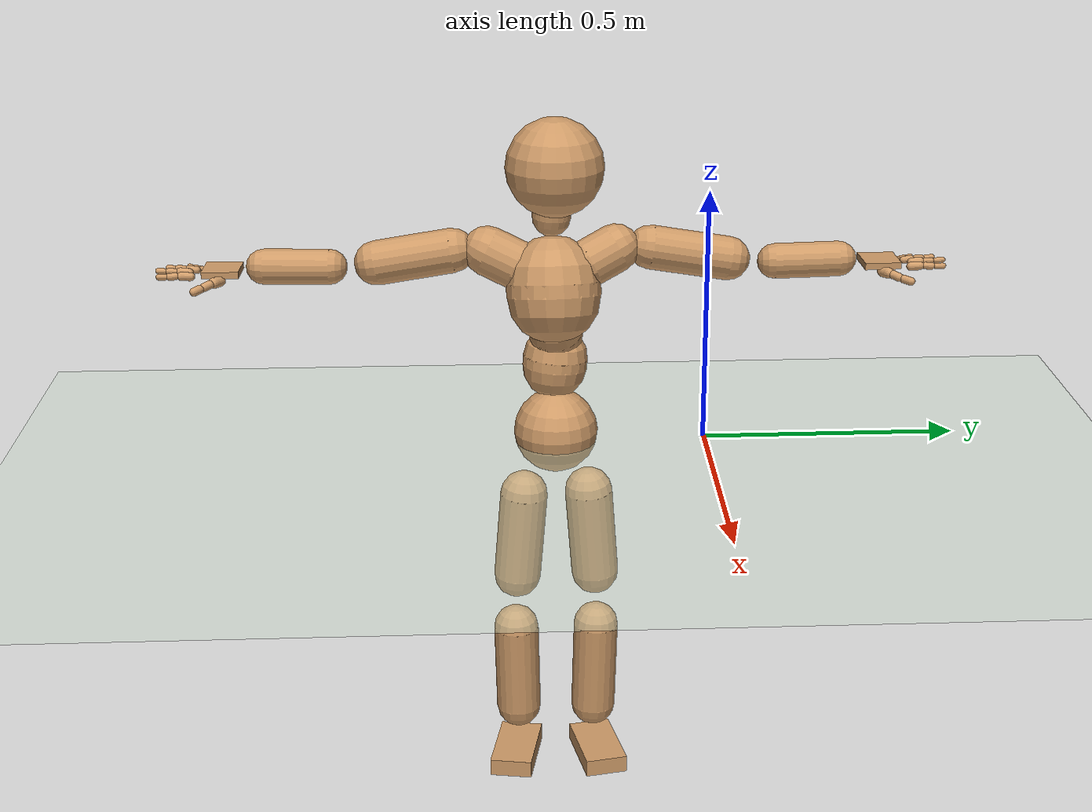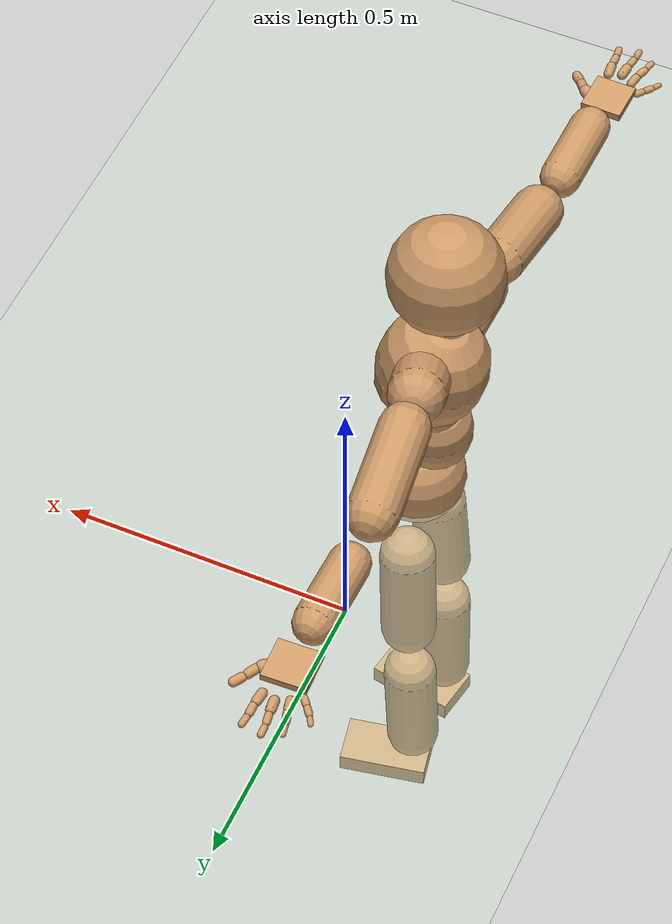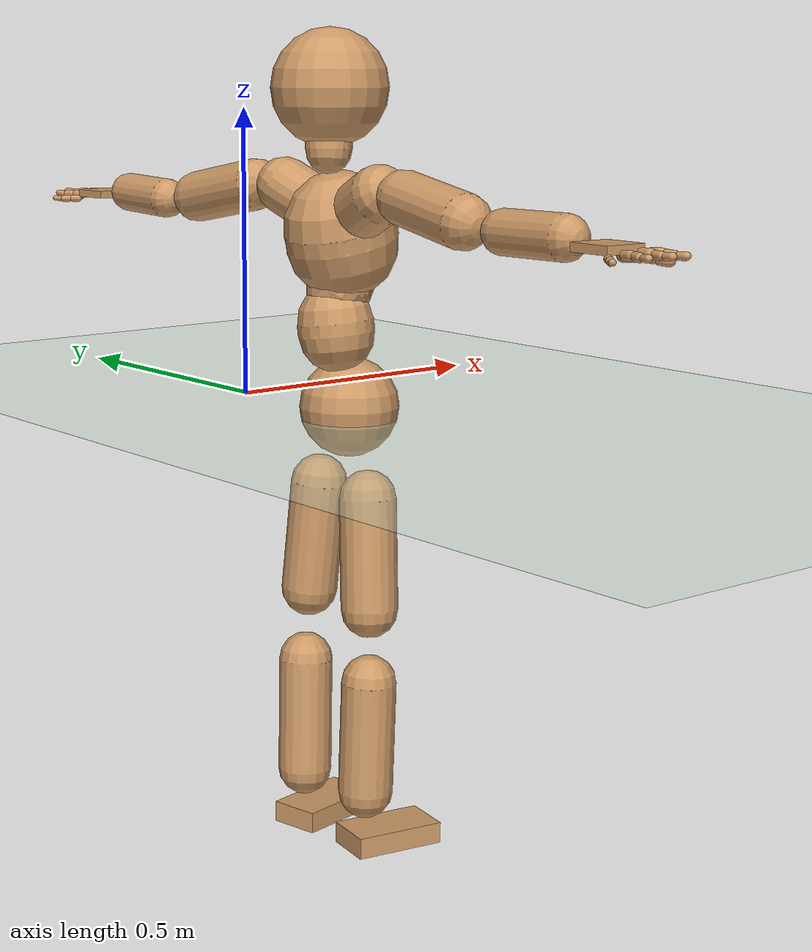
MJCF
<mujoco model="humanoid">
  <compiler coordinate="local" angle="radian"/>
  <default>
    <joint damping="0.0" armature="0.01" stiffness="0.0" limited="true"/>
    <geom conaffinity="1" condim="3" contype="7" margin="0.001" rgba="0.8 0.6 .4 1"/>
  </default>
  <asset>
    <texture type="skybox" builtin="gradient" rgb1=".4 .5 .6" rgb2="0 0 0" width="100" height="100"/>
    <texture builtin="flat" height="1278" mark="cross" markrgb="1 1 1" name="texgeom" random="0.01" rgb1="0.8 0.6 0.4" rgb2="0.8 0.6 0.4" type="cube" width="127"/>
    <texture builtin="checker" height="100" name="texplane" rgb1="0 0 0" rgb2="0.8 0.8 0.8" type="2d" width="100"/>
    <material name="MatPlane" reflectance="0.5" shininess="1" specular="1" texrepeat="60 60" texture="texplane"/>
    <material name="geom" texture="texgeom" texuniform="true"/>
  </asset>
  <worldbody>
    <light cutoff="100" diffuse="1 1 1" dir="-0 0 -1.3" directional="true" exponent="1" pos="0 0 1.3" specular=".1 .1 .1"/>
    <geom conaffinity="1" condim="3" name="floor" pos="0 0 0" rgba="0.8 0.9 0.8 1" size="100 100 .2" type="plane" material="MatPlane"/>
    <body name="Pelvis" pos="0.0001 -0.2955 0.0185">
      <freejoint name="Pelvis"/>
      <geom type="sphere" contype="1" conaffinity="1" density="500" size="0.0831" pos="0.0000 0.0000 0.0000" name="Pelvis"/>
      <body name="L_Hip" pos="-0.0088 0.0613 -0.0761">
        <joint name="L_Hip_x" type="hinge" pos="0 0 0" axis="1 0 0" stiffness="800" damping="80" armature="0.02" range="-180.0000 180.0000"/>
        <joint name="L_Hip_y" type="hinge" pos="0 0 0" axis="0 1 0" stiffness="800" damping="80" armature="0.02" range="-180.0000 180.0000"/>
        <joint name="L_Hip_z" type="hinge" pos="0 0 0" axis="0 0 1" stiffness="800" damping="80" armature="0.02" range="-180.0000 180.0000"/>
        <geom type="capsule" contype="1" conaffinity="1" density="500" fromto="-0.0036 0.0045 -0.0622 -0.0142 0.0180 -0.2486" size="0.0478" name="L_Hip"/>
        <body name="L_Knee" pos="-0.0178 0.0225 -0.3108">
          <joint name="L_Knee_x" type="hinge" pos="0 0 0" axis="1 0 0" stiffness="800" damping="80" armature="0.02" range="-180.0000 180.0000"/>
          <joint name="L_Knee_y" type="hinge" pos="0 0 0" axis="0 1 0" stiffness="800" damping="80" armature="0.02" range="-180.0000 180.0000"/>
          <joint name="L_Knee_z" type="hinge" pos="0 0 0" axis="0 0 1" stiffness="800" damping="80" armature="0.02" range="-180.0000 180.0000"/>
          <geom type="capsule" contype="1" conaffinity="1" density="500" fromto="-0.0022 -0.0018 -0.0650 -0.0088 -0.0073 -0.2599" size="0.046" name="L_Knee"/>
          <body name="L_Ankle" pos="-0.011 -0.0092 -0.3249">
            <joint name="L_Ankle_x" type="hinge" pos="0 0 0" axis="1 0 0" stiffness="800" damping="80" armature="0.02" range="-180.0000 180.0000"/>
            <joint name="L_Ankle_y" type="hinge" pos="0 0 0" axis="0 1 0" stiffness="800" damping="80" armature="0.02" range="-180.0000 180.0000"/>
            <joint name="L_Ankle_z" type="hinge" pos="0 0 0" axis="0 0 1" stiffness="800" damping="80" armature="0.02" range="-180.0000 180.0000"/>
            <geom type="box" contype="1" conaffinity="1" density="500" pos="0.0492 0.0097 -0.0192" size="0.0778 0.043 0.0178" quat="0.9953 0.0000 0.0000 0.0971" name="L_Ankle"/>
            <body name="L_Toe" pos="0.0984 0.0194 -0.0384">
              <joint name="L_Toe_x" type="hinge" pos="0 0 0" axis="1 0 0" stiffness="500" damping="50" armature="0.02" range="-180.0000 180.0000"/>
              <joint name="L_Toe_y" type="hinge" pos="0 0 0" axis="0 1 0" stiffness="500" damping="50" armature="0.02" range="-180.0000 180.0000"/>
              <joint name="L_Toe_z" type="hinge" pos="0 0 0" axis="0 0 1" stiffness="500" damping="50" armature="0.02" range="-180.0000 180.0000"/>
              <geom type="box" contype="1" conaffinity="1" density="500" pos="0.0000 0.0000 0.0205" size="0.0009 0.0022 0.001" quat="0.9945 0.0000 0.0000 0.1047" name="L_Toe"/>
            </body>
          </body>
        </body>
      </body>
      <body name="R_Hip" pos="-0.0102 -0.0598 -0.0823">
        <joint name="R_Hip_x" type="hinge" pos="0 0 0" axis="1 0 0" stiffness="800" damping="80" armature="0.02" range="-180.0000 180.0000"/>
        <joint name="R_Hip_y" type="hinge" pos="0 0 0" axis="0 1 0" stiffness="800" damping="80" armature="0.02" range="-180.0000 180.0000"/>
        <joint name="R_Hip_z" type="hinge" pos="0 0 0" axis="0 0 1" stiffness="800" damping="80" armature="0.02" range="-180.0000 180.0000"/>
        <geom type="capsule" contype="1" conaffinity="1" density="500" fromto="-0.0025 -0.0052 -0.0613 -0.0100 -0.0209 -0.2452" size="0.0477" name="R_Hip"/>
        <body name="R_Knee" pos="-0.0125 -0.0261 -0.3065">
          <joint name="R_Knee_x" type="hinge" pos="0 0 0" axis="1 0 0" stiffness="800" damping="80" armature="0.02" range="-180.0000 180.0000"/>
          <joint name="R_Knee_y" type="hinge" pos="0 0 0" axis="0 1 0" stiffness="800" damping="80" armature="0.02" range="-180.0000 180.0000"/>
          <joint name="R_Knee_z" type="hinge" pos="0 0 0" axis="0 0 1" stiffness="800" damping="80" armature="0.02" range="-180.0000 180.0000"/>
          <geom type="capsule" contype="1" conaffinity="1" density="500" fromto="-0.0013 0.0010 -0.0634 -0.0054 0.0039 -0.2537" size="0.046" name="R_Knee"/>
          <body name="R_Ankle" pos="-0.0067 0.0049 -0.3171">
            <joint name="R_Ankle_x" type="hinge" pos="0 0 0" axis="1 0 0" stiffness="800" damping="80" armature="0.02" range="-180.0000 180.0000"/>
            <joint name="R_Ankle_y" type="hinge" pos="0 0 0" axis="0 1 0" stiffness="800" damping="80" armature="0.02" range="-180.0000 180.0000"/>
            <joint name="R_Ankle_z" type="hinge" pos="0 0 0" axis="0 0 1" stiffness="800" damping="80" armature="0.02" range="-180.0000 180.0000"/>
            <geom type="box" contype="1" conaffinity="1" density="500" pos="0.0461 -0.0079 -0.0210" size="0.0778 0.043 0.0178" quat="0.9964 0.0000 0.0000 -0.0844" name="R_Ankle"/>
            <body name="R_Toe" pos="0.0923 -0.0157 -0.0419">
              <joint name="R_Toe_x" type="hinge" pos="0 0 0" axis="1 0 0" stiffness="500" damping="50" armature="0.02" range="-180.0000 180.0000"/>
              <joint name="R_Toe_y" type="hinge" pos="0 0 0" axis="0 1 0" stiffness="500" damping="50" armature="0.02" range="-180.0000 180.0000"/>
              <joint name="R_Toe_z" type="hinge" pos="0 0 0" axis="0 0 1" stiffness="500" damping="50" armature="0.02" range="-180.0000 180.0000"/>
              <geom type="box" contype="1" conaffinity="1" density="500" pos="0.0000 0.0000 0.0222" size="0.0009 0.0022 0.001" quat="0.9974 0.0000 0.0000 -0.0723" name="R_Toe"/>
            </body>
          </body>
        </body>
      </body>
      <body name="Torso" pos="-0.0258 -0.0048 0.0842">
        <joint name="Torso_x" type="hinge" pos="0 0 0" axis="1 0 0" stiffness="1000" damping="100" armature="0.02" range="-180.0000 180.0000"/>
        <joint name="Torso_y" type="hinge" pos="0 0 0" axis="0 1 0" stiffness="1000" damping="100" armature="0.02" range="-180.0000 180.0000"/>
        <joint name="Torso_z" type="hinge" pos="0 0 0" axis="0 0 1" stiffness="1000" damping="100" armature="0.02" range="-180.0000 180.0000"/>
        <geom type="capsule" contype="1" conaffinity="1" density="500" fromto="-0.0035 0.0058 0.0599 -0.0023 0.0039 0.0399" size="0.0635" name="Torso"/>
        <body name="Spine" pos="-0.0058 0.0096 0.0998">
          <joint name="Spine_x" type="hinge" pos="0 0 0" axis="1 0 0" stiffness="1000" damping="100" armature="0.02" range="-180.0000 180.0000"/>
          <joint name="Spine_y" type="hinge" pos="0 0 0" axis="0 1 0" stiffness="1000" damping="100" armature="0.02" range="-180.0000 180.0000"/>
          <joint name="Spine_z" type="hinge" pos="0 0 0" axis="0 0 1" stiffness="1000" damping="100" armature="0.02" range="-180.0000 180.0000"/>
          <geom type="capsule" contype="1" conaffinity="1" density="500" fromto="0.0164 -0.0033 0.0225 0.0110 -0.0022 0.0150" size="0.0542" name="Spine"/>
          <body name="Chest" pos="0.0274 -0.0055 0.0374">
            <joint name="Chest_x" type="hinge" pos="0 0 0" axis="1 0 0" stiffness="1000" damping="100" armature="0.02" range="-180.0000 180.0000"/>
            <joint name="Chest_y" type="hinge" pos="0 0 0" axis="0 1 0" stiffness="1000" damping="100" armature="0.02" range="-180.0000 180.0000"/>
            <joint name="Chest_z" type="hinge" pos="0 0 0" axis="0 0 1" stiffness="1000" damping="100" armature="0.02" range="-180.0000 180.0000"/>
            <geom type="capsule" contype="1" conaffinity="1" density="500" fromto="-0.0185 -0.0016 0.0766 -0.0123 -0.0010 0.0511" size="0.0926" name="Chest"/>
            <body name="Neck" pos="-0.0451 -0.0055 0.1765">
              <joint name="Neck_x" type="hinge" pos="0 0 0" axis="1 0 0" stiffness="500" damping="50" armature="0.02" range="-180.0000 180.0000"/>
              <joint name="Neck_y" type="hinge" pos="0 0 0" axis="0 1 0" stiffness="500" damping="50" armature="0.02" range="-180.0000 180.0000"/>
              <joint name="Neck_z" type="hinge" pos="0 0 0" axis="0 0 1" stiffness="500" damping="50" armature="0.02" range="-180.0000 180.0000"/>
              <geom type="capsule" contype="1" conaffinity="1" density="500" fromto="0.0019 0.0018 0.0246 0.0076 0.0070 0.0985" size="0.0377" name="Neck"/>
              <body name="Head" pos="0.0095 0.0088 0.1232">
                <joint name="Head_x" type="hinge" pos="0 0 0" axis="1 0 0" stiffness="500" damping="50" armature="0.02" range="-180.0000 180.0000"/>
                <joint name="Head_y" type="hinge" pos="0 0 0" axis="0 1 0" stiffness="500" damping="50" armature="0.02" range="-180.0000 180.0000"/>
                <joint name="Head_z" type="hinge" pos="0 0 0" axis="0 0 1" stiffness="500" damping="50" armature="0.02" range="-180.0000 180.0000"/>
                <geom type="sphere" contype="1" conaffinity="1" density="500" size="0.0956" pos="0.0000 0.0000 0.0000" name="Head"/>
              </body>
            </body>
            <body name="L_Thorax" pos="-0.0211 0.0506 0.1049">
              <joint name="L_Thorax_x" type="hinge" pos="0 0 0" axis="1 0 0" stiffness="500" damping="50" armature="0.02" range="-180.0000 180.0000"/>
              <joint name="L_Thorax_y" type="hinge" pos="0 0 0" axis="0 1 0" stiffness="500" damping="50" armature="0.02" range="-180.0000 180.0000"/>
              <joint name="L_Thorax_z" type="hinge" pos="0 0 0" axis="0 0 1" stiffness="500" damping="50" armature="0.02" range="-180.0000 180.0000"/>
              <geom type="capsule" contype="1" conaffinity="1" density="500" fromto="-0.0045 0.0173 0.0083 -0.0179 0.0692 0.0334" size="0.0476" name="L_Thorax"/>
              <body name="L_Shoulder" pos="-0.0224 0.0866 0.0417">
                <joint name="L_Shoulder_x" type="hinge" pos="0 0 0" axis="1 0 0" stiffness="500" damping="50" armature="0.02" range="-180.0000 180.0000"/>
                <joint name="L_Shoulder_y" type="hinge" pos="0 0 0" axis="0 1 0" stiffness="500" damping="50" armature="0.02" range="-180.0000 180.0000"/>
                <joint name="L_Shoulder_z" type="hinge" pos="0 0 0" axis="0 0 1" stiffness="500" damping="50" armature="0.02" range="-180.0000 180.0000"/>
                <geom type="capsule" contype="1" conaffinity="1" density="500" fromto="-0.0045 0.0512 -0.0096 -0.0181 0.2048 -0.0385" size="0.0433" name="L_Shoulder"/>
                <body name="L_Elbow" pos="-0.0226 0.256 -0.0481">
                  <joint name="L_Elbow_x" type="hinge" pos="0 0 0" axis="1 0 0" stiffness="500" damping="50" armature="0.02" range="-720.0000 720.0000"/>
                  <joint name="L_Elbow_y" type="hinge" pos="0 0 0" axis="0 1 0" stiffness="500" damping="50" armature="0.02" range="-720.0000 720.0000"/>
                  <joint name="L_Elbow_z" type="hinge" pos="0 0 0" axis="0 0 1" stiffness="500" damping="50" armature="0.02" range="-720.0000 720.0000"/>
                  <geom type="capsule" contype="1" conaffinity="1" density="500" fromto="0.0008 0.0421 0.0013 0.0030 0.1684 0.0052" size="0.0344" name="L_Elbow"/>
                  <body name="L_Wrist" pos="0.0038 0.2104 0.0065">
                    <joint name="L_Wrist_x" type="hinge" pos="0 0 0" axis="1 0 0" stiffness="300" damping="30" armature="0.02" range="-180.0000 180.0000"/>
                    <joint name="L_Wrist_y" type="hinge" pos="0 0 0" axis="0 1 0" stiffness="300" damping="30" armature="0.02" range="-180.0000 180.0000"/>
                    <joint name="L_Wrist_z" type="hinge" pos="0 0 0" axis="0 0 1" stiffness="300" damping="30" armature="0.02" range="-180.0000 180.0000"/>
                    <geom type="box" contype="1" conaffinity="1" density="500" pos="-0.0017 0.0390 -0.0077" size="0.0358 0.0374 0.0065" quat="0.7222 0.0000 0.0000 -0.6917" name="L_Wrist"/>
                    <body name="L_Index1" pos="0.0195 0.0918 -0.0137">
                      <joint name="L_Index1_x" type="hinge" pos="0 0 0" axis="1 0 0" stiffness="100" damping="10" armature="0.02" range="-180.0000 180.0000"/>
                      <joint name="L_Index1_y" type="hinge" pos="0 0 0" axis="0 1 0" stiffness="100" damping="10" armature="0.02" range="-180.0000 180.0000"/>
                      <joint name="L_Index1_z" type="hinge" pos="0 0 0" axis="0 0 1" stiffness="100" damping="10" armature="0.02" range="-180.0000 180.0000"/>
                      <geom type="capsule" contype="1" conaffinity="1" density="500" fromto="0.0005 0.0059 0.0005 0.0020 0.0236 0.0019" size="0.0083" name="L_Index1"/>
                      <body name="L_Index2" pos="0.0025 0.0295 0.0024">
                        <joint name="L_Index2_x" type="hinge" pos="0 0 0" axis="1 0 0" stiffness="100" damping="10" armature="0.02" range="-180.0000 180.0000"/>
                        <joint name="L_Index2_y" type="hinge" pos="0 0 0" axis="0 1 0" stiffness="100" damping="10" armature="0.02" range="-180.0000 180.0000"/>
                        <joint name="L_Index2_z" type="hinge" pos="0 0 0" axis="0 0 1" stiffness="100" damping="10" armature="0.02" range="-180.0000 180.0000"/>
                        <geom type="capsule" contype="1" conaffinity="1" density="500" fromto="0.0001 0.0042 -0.0003 0.0003 0.0168 -0.0010" size="0.0069" name="L_Index2"/>
                        <body name="L_Index3" pos="0.0003 0.0209 -0.0013">
                          <joint name="L_Index3_x" type="hinge" pos="0 0 0" axis="1 0 0" stiffness="100" damping="10" armature="0.02" range="-180.0000 180.0000"/>
                          <joint name="L_Index3_y" type="hinge" pos="0 0 0" axis="0 1 0" stiffness="100" damping="10" armature="0.02" range="-180.0000 180.0000"/>
                          <joint name="L_Index3_z" type="hinge" pos="0 0 0" axis="0 0 1" stiffness="100" damping="10" armature="0.02" range="-180.0000 180.0000"/>
                          <geom type="capsule" contype="1" conaffinity="1" density="500" fromto="0.0005 0.0046 0.0001 0.0019 0.0184 0.0006" size="0.0058" name="L_Index3"/>
                        </body>
                      </body>
                    </body>
                    <body name="L_Middle1" pos="-0.0016 0.0982 -0.0117">
                      <joint name="L_Middle1_x" type="hinge" pos="0 0 0" axis="1 0 0" stiffness="100" damping="10" armature="0.02" range="-180.0000 180.0000"/>
                      <joint name="L_Middle1_y" type="hinge" pos="0 0 0" axis="0 1 0" stiffness="100" damping="10" armature="0.02" range="-180.0000 180.0000"/>
                      <joint name="L_Middle1_z" type="hinge" pos="0 0 0" axis="0 0 1" stiffness="100" damping="10" armature="0.02" range="-180.0000 180.0000"/>
                      <geom type="capsule" contype="1" conaffinity="1" density="500" fromto="-0.0008 0.0056 0.0002 -0.0030 0.0225 0.0009" size="0.0085" name="L_Middle1"/>
                      <body name="L_Middle2" pos="-0.0038 0.0281 0.0011">
                        <joint name="L_Middle2_x" type="hinge" pos="0 0 0" axis="1 0 0" stiffness="100" damping="10" armature="0.02" range="-180.0000 180.0000"/>
                        <joint name="L_Middle2_y" type="hinge" pos="0 0 0" axis="0 1 0" stiffness="100" damping="10" armature="0.02" range="-180.0000 180.0000"/>
                        <joint name="L_Middle2_z" type="hinge" pos="0 0 0" axis="0 0 1" stiffness="100" damping="10" armature="0.02" range="-180.0000 180.0000"/>
                        <geom type="capsule" contype="1" conaffinity="1" density="500" fromto="-0.0007 0.0044 -0.0001 -0.0028 0.0175 -0.0004" size="0.0064" name="L_Middle2"/>
                        <body name="L_Middle3" pos="-0.0035 0.0219 -0.0006">
                          <joint name="L_Middle3_x" type="hinge" pos="0 0 0" axis="1 0 0" stiffness="100" damping="10" armature="0.02" range="-180.0000 180.0000"/>
                          <joint name="L_Middle3_y" type="hinge" pos="0 0 0" axis="0 1 0" stiffness="100" damping="10" armature="0.02" range="-180.0000 180.0000"/>
                          <joint name="L_Middle3_z" type="hinge" pos="0 0 0" axis="0 0 1" stiffness="100" damping="10" armature="0.02" range="-180.0000 180.0000"/>
                          <geom type="capsule" contype="1" conaffinity="1" density="500" fromto="-0.0003 0.0048 0.0003 -0.0012 0.0191 0.0012" size="0.0056" name="L_Middle3"/>
                        </body>
                      </body>
                    </body>
                    <body name="L_Pinky1" pos="-0.0371 0.075 -0.0183">
                      <joint name="L_Pinky1_x" type="hinge" pos="0 0 0" axis="1 0 0" stiffness="100" damping="10" armature="0.02" range="-180.0000 180.0000"/>
                      <joint name="L_Pinky1_y" type="hinge" pos="0 0 0" axis="0 1 0" stiffness="100" damping="10" armature="0.02" range="-180.0000 180.0000"/>
                      <joint name="L_Pinky1_z" type="hinge" pos="0 0 0" axis="0 0 1" stiffness="100" damping="10" armature="0.02" range="-180.0000 180.0000"/>
                      <geom type="capsule" contype="1" conaffinity="1" density="500" fromto="-0.0023 0.0028 -0.0001 -0.0091 0.0111 -0.0002" size="0.0061" name="L_Pinky1"/>
                      <body name="L_Pinky2" pos="-0.0114 0.0139 -0.0003">
                        <joint name="L_Pinky2_x" type="hinge" pos="0 0 0" axis="1 0 0" stiffness="100" damping="10" armature="0.02" range="-180.0000 180.0000"/>
                        <joint name="L_Pinky2_y" type="hinge" pos="0 0 0" axis="0 1 0" stiffness="100" damping="10" armature="0.02" range="-180.0000 180.0000"/>
                        <joint name="L_Pinky2_z" type="hinge" pos="0 0 0" axis="0 0 1" stiffness="100" damping="10" armature="0.02" range="-180.0000 180.0000"/>
                        <geom type="capsule" contype="1" conaffinity="1" density="500" fromto="-0.0022 0.0028 -0.0002 -0.0089 0.0112 -0.0006" size="0.006" name="L_Pinky2"/>
                        <body name="L_Pinky3" pos="-0.0111 0.014 -0.0008">
                          <joint name="L_Pinky3_x" type="hinge" pos="0 0 0" axis="1 0 0" stiffness="100" damping="10" armature="0.02" range="-180.0000 180.0000"/>
                          <joint name="L_Pinky3_y" type="hinge" pos="0 0 0" axis="0 1 0" stiffness="100" damping="10" armature="0.02" range="-180.0000 180.0000"/>
                          <joint name="L_Pinky3_z" type="hinge" pos="0 0 0" axis="0 0 1" stiffness="100" damping="10" armature="0.02" range="-180.0000 180.0000"/>
                          <geom type="capsule" contype="1" conaffinity="1" density="500" fromto="-0.0018 0.0032 0.0002 -0.0073 0.0128 0.0010" size="0.0046" name="L_Pinky3"/>
                        </body>
                      </body>
                    </body>
                    <body name="L_Ring1" pos="-0.0225 0.0871 -0.0138">
                      <joint name="L_Ring1_x" type="hinge" pos="0 0 0" axis="1 0 0" stiffness="100" damping="10" armature="0.02" range="-180.0000 180.0000"/>
                      <joint name="L_Ring1_y" type="hinge" pos="0 0 0" axis="0 1 0" stiffness="100" damping="10" armature="0.02" range="-180.0000 180.0000"/>
                      <joint name="L_Ring1_z" type="hinge" pos="0 0 0" axis="0 0 1" stiffness="100" damping="10" armature="0.02" range="-180.0000 180.0000"/>
                      <geom type="capsule" contype="1" conaffinity="1" density="500" fromto="-0.0010 0.0051 0.0003 -0.0042 0.0204 0.0013" size="0.0073" name="L_Ring1"/>
                      <body name="L_Ring2" pos="-0.0052 0.0255 0.0016">
                        <joint name="L_Ring2_x" type="hinge" pos="0 0 0" axis="1 0 0" stiffness="100" damping="10" armature="0.02" range="-180.0000 180.0000"/>
                        <joint name="L_Ring2_y" type="hinge" pos="0 0 0" axis="0 1 0" stiffness="100" damping="10" armature="0.02" range="-180.0000 180.0000"/>
                        <joint name="L_Ring2_z" type="hinge" pos="0 0 0" axis="0 0 1" stiffness="100" damping="10" armature="0.02" range="-180.0000 180.0000"/>
                        <geom type="capsule" contype="1" conaffinity="1" density="500" fromto="-0.0013 0.0042 -0.0002 -0.0054 0.0168 -0.0007" size="0.0068" name="L_Ring2"/>
                        <body name="L_Ring3" pos="-0.0067 0.021 -0.0008">
                          <joint name="L_Ring3_x" type="hinge" pos="0 0 0" axis="1 0 0" stiffness="100" damping="10" armature="0.02" range="-180.0000 180.0000"/>
                          <joint name="L_Ring3_y" type="hinge" pos="0 0 0" axis="0 1 0" stiffness="100" damping="10" armature="0.02" range="-180.0000 180.0000"/>
                          <joint name="L_Ring3_z" type="hinge" pos="0 0 0" axis="0 0 1" stiffness="100" damping="10" armature="0.02" range="-180.0000 180.0000"/>
                          <geom type="capsule" contype="1" conaffinity="1" density="500" fromto="-0.0009 0.0046 0.0002 -0.0038 0.0184 0.0009" size="0.0054" name="L_Ring3"/>
                        </body>
                      </body>
                    </body>
                    <body name="L_Thumb1" pos="0.0249 0.0377 -0.02">
                      <joint name="L_Thumb1_x" type="hinge" pos="0 0 0" axis="1 0 0" stiffness="100" damping="10" armature="0.02" range="-180.0000 180.0000"/>
                      <joint name="L_Thumb1_y" type="hinge" pos="0 0 0" axis="0 1 0" stiffness="100" damping="10" armature="0.02" range="-180.0000 180.0000"/>
                      <joint name="L_Thumb1_z" type="hinge" pos="0 0 0" axis="0 0 1" stiffness="100" damping="10" armature="0.02" range="-180.0000 180.0000"/>
                      <geom type="capsule" contype="1" conaffinity="1" density="500" fromto="0.0044 0.0031 0.0001 0.0176 0.0126 0.0005" size="0.0106" name="L_Thumb1"/>
                      <body name="L_Thumb2" pos="0.022 0.0157 0.0006">
                        <joint name="L_Thumb2_x" type="hinge" pos="0 0 0" axis="1 0 0" stiffness="100" damping="10" armature="0.02" range="-180.0000 180.0000"/>
                        <joint name="L_Thumb2_y" type="hinge" pos="0 0 0" axis="0 1 0" stiffness="100" damping="10" armature="0.02" range="-180.0000 180.0000"/>
                        <joint name="L_Thumb2_z" type="hinge" pos="0 0 0" axis="0 0 1" stiffness="100" damping="10" armature="0.02" range="-180.0000 180.0000"/>
                        <geom type="capsule" contype="1" conaffinity="1" density="500" fromto="0.0026 0.0037 -0.0011 0.0106 0.0148 -0.0044" size="0.0083" name="L_Thumb2"/>
                        <body name="L_Thumb3" pos="0.0132 0.0185 -0.0054">
                          <joint name="L_Thumb3_x" type="hinge" pos="0 0 0" axis="1 0 0" stiffness="100" damping="10" armature="0.02" range="-180.0000 180.0000"/>
                          <joint name="L_Thumb3_y" type="hinge" pos="0 0 0" axis="0 1 0" stiffness="100" damping="10" armature="0.02" range="-180.0000 180.0000"/>
                          <joint name="L_Thumb3_z" type="hinge" pos="0 0 0" axis="0 0 1" stiffness="100" damping="10" armature="0.02" range="-180.0000 180.0000"/>
                          <geom type="capsule" contype="1" conaffinity="1" density="500" fromto="0.0030 0.0041 -0.0007 0.0122 0.0164 -0.0028" size="0.008" name="L_Thumb3"/>
                        </body>
                      </body>
                    </body>
                  </body>
                </body>
              </body>
            </body>
            <body name="R_Thorax" pos="-0.0264 -0.0529 0.1016">
              <joint name="R_Thorax_x" type="hinge" pos="0 0 0" axis="1 0 0" stiffness="500" damping="50" armature="0.02" range="-180.0000 180.0000"/>
              <joint name="R_Thorax_y" type="hinge" pos="0 0 0" axis="0 1 0" stiffness="500" damping="50" armature="0.02" range="-180.0000 180.0000"/>
              <joint name="R_Thorax_z" type="hinge" pos="0 0 0" axis="0 0 1" stiffness="500" damping="50" armature="0.02" range="-180.0000 180.0000"/>
              <geom type="capsule" contype="1" conaffinity="1" density="500" fromto="-0.0033 -0.0186 0.0086 -0.0130 -0.0745 0.0346" size="0.0488" name="R_Thorax"/>
              <body name="R_Shoulder" pos="-0.0163 -0.0931 0.0432">
                <joint name="R_Shoulder_x" type="hinge" pos="0 0 0" axis="1 0 0" stiffness="500" damping="50" armature="0.02" range="-180.0000 180.0000"/>
                <joint name="R_Shoulder_y" type="hinge" pos="0 0 0" axis="0 1 0" stiffness="500" damping="50" armature="0.02" range="-180.0000 180.0000"/>
                <joint name="R_Shoulder_z" type="hinge" pos="0 0 0" axis="0 0 1" stiffness="500" damping="50" armature="0.02" range="-180.0000 180.0000"/>
                <geom type="capsule" contype="1" conaffinity="1" density="500" fromto="-0.0034 -0.0492 -0.0086 -0.0134 -0.1970 -0.0344" size="0.0436" name="R_Shoulder"/>
                <body name="R_Elbow" pos="-0.0168 -0.2462 -0.043">
                  <joint name="R_Elbow_x" type="hinge" pos="0 0 0" axis="1 0 0" stiffness="500" damping="50" armature="0.02" range="-720.0000 720.0000"/>
                  <joint name="R_Elbow_y" type="hinge" pos="0 0 0" axis="0 1 0" stiffness="500" damping="50" armature="0.02" range="-720.0000 720.0000"/>
                  <joint name="R_Elbow_z" type="hinge" pos="0 0 0" axis="0 0 1" stiffness="500" damping="50" armature="0.02" range="-720.0000 720.0000"/>
                  <geom type="capsule" contype="1" conaffinity="1" density="500" fromto="-0.0008 -0.0423 0.0005 -0.0032 -0.1691 0.0019" size="0.0346" name="R_Elbow"/>
                  <body name="R_Wrist" pos="-0.0041 -0.2113 0.0024">
                    <joint name="R_Wrist_x" type="hinge" pos="0 0 0" axis="1 0 0" stiffness="300" damping="30" armature="0.02" range="-180.0000 180.0000"/>
                    <joint name="R_Wrist_y" type="hinge" pos="0 0 0" axis="0 1 0" stiffness="300" damping="30" armature="0.02" range="-180.0000 180.0000"/>
                    <joint name="R_Wrist_z" type="hinge" pos="0 0 0" axis="0 0 1" stiffness="300" damping="30" armature="0.02" range="-180.0000 180.0000"/>
                    <geom type="box" contype="1" conaffinity="1" density="500" pos="-0.0011 -0.0385 -0.0073" size="0.0358 0.0351 0.0067" quat="0.7171 0.0000 0.0000 0.6970" name="R_Wrist"/>
                    <body name="R_Index1" pos="0.0207 -0.0908 -0.0129">
                      <joint name="R_Index1_x" type="hinge" pos="0 0 0" axis="1 0 0" stiffness="100" damping="10" armature="0.02" range="-180.0000 180.0000"/>
                      <joint name="R_Index1_y" type="hinge" pos="0 0 0" axis="0 1 0" stiffness="100" damping="10" armature="0.02" range="-180.0000 180.0000"/>
                      <joint name="R_Index1_z" type="hinge" pos="0 0 0" axis="0 0 1" stiffness="100" damping="10" armature="0.02" range="-180.0000 180.0000"/>
                      <geom type="capsule" contype="1" conaffinity="1" density="500" fromto="0.0005 -0.0059 0.0005 0.0020 -0.0236 0.0019" size="0.0083" name="R_Index1"/>
                      <body name="R_Index2" pos="0.0025 -0.0295 0.0024">
                        <joint name="R_Index2_x" type="hinge" pos="0 0 0" axis="1 0 0" stiffness="100" damping="10" armature="0.02" range="-180.0000 180.0000"/>
                        <joint name="R_Index2_y" type="hinge" pos="0 0 0" axis="0 1 0" stiffness="100" damping="10" armature="0.02" range="-180.0000 180.0000"/>
                        <joint name="R_Index2_z" type="hinge" pos="0 0 0" axis="0 0 1" stiffness="100" damping="10" armature="0.02" range="-180.0000 180.0000"/>
                        <geom type="capsule" contype="1" conaffinity="1" density="500" fromto="0.0001 -0.0042 -0.0003 0.0003 -0.0168 -0.0010" size="0.0069" name="R_Index2"/>
                        <body name="R_Index3" pos="0.0003 -0.0209 -0.0013">
                          <joint name="R_Index3_x" type="hinge" pos="0 0 0" axis="1 0 0" stiffness="100" damping="10" armature="0.02" range="-180.0000 180.0000"/>
                          <joint name="R_Index3_y" type="hinge" pos="0 0 0" axis="0 1 0" stiffness="100" damping="10" armature="0.02" range="-180.0000 180.0000"/>
                          <joint name="R_Index3_z" type="hinge" pos="0 0 0" axis="0 0 1" stiffness="100" damping="10" armature="0.02" range="-180.0000 180.0000"/>
                          <geom type="capsule" contype="1" conaffinity="1" density="500" fromto="0.0005 -0.0038 0.0001 0.0019 -0.0152 0.0006" size="0.0061" name="R_Index3"/>
                        </body>
                      </body>
                    </body>
                    <body name="R_Middle1" pos="-0.0004 -0.0972 -0.0109">
                      <joint name="R_Middle1_x" type="hinge" pos="0 0 0" axis="1 0 0" stiffness="100" damping="10" armature="0.02" range="-180.0000 180.0000"/>
                      <joint name="R_Middle1_y" type="hinge" pos="0 0 0" axis="0 1 0" stiffness="100" damping="10" armature="0.02" range="-180.0000 180.0000"/>
                      <joint name="R_Middle1_z" type="hinge" pos="0 0 0" axis="0 0 1" stiffness="100" damping="10" armature="0.02" range="-180.0000 180.0000"/>
                      <geom type="capsule" contype="1" conaffinity="1" density="500" fromto="-0.0008 -0.0056 0.0002 -0.0030 -0.0225 0.0009" size="0.0085" name="R_Middle1"/>
                      <body name="R_Middle2" pos="-0.0038 -0.0281 0.0011">
                        <joint name="R_Middle2_x" type="hinge" pos="0 0 0" axis="1 0 0" stiffness="100" damping="10" armature="0.02" range="-180.0000 180.0000"/>
                        <joint name="R_Middle2_y" type="hinge" pos="0 0 0" axis="0 1 0" stiffness="100" damping="10" armature="0.02" range="-180.0000 180.0000"/>
                        <joint name="R_Middle2_z" type="hinge" pos="0 0 0" axis="0 0 1" stiffness="100" damping="10" armature="0.02" range="-180.0000 180.0000"/>
                        <geom type="capsule" contype="1" conaffinity="1" density="500" fromto="-0.0007 -0.0044 -0.0001 -0.0028 -0.0175 -0.0004" size="0.0064" name="R_Middle2"/>
                        <body name="R_Middle3" pos="-0.0035 -0.0219 -0.0006">
                          <joint name="R_Middle3_x" type="hinge" pos="0 0 0" axis="1 0 0" stiffness="100" damping="10" armature="0.02" range="-180.0000 180.0000"/>
                          <joint name="R_Middle3_y" type="hinge" pos="0 0 0" axis="0 1 0" stiffness="100" damping="10" armature="0.02" range="-180.0000 180.0000"/>
                          <joint name="R_Middle3_z" type="hinge" pos="0 0 0" axis="0 0 1" stiffness="100" damping="10" armature="0.02" range="-180.0000 180.0000"/>
                          <geom type="capsule" contype="1" conaffinity="1" density="500" fromto="-0.0003 -0.0040 0.0003 -0.0012 -0.0159 0.0012" size="0.0059" name="R_Middle3"/>
                        </body>
                      </body>
                    </body>
                    <body name="R_Pinky1" pos="-0.0359 -0.074 -0.0175">
                      <joint name="R_Pinky1_x" type="hinge" pos="0 0 0" axis="1 0 0" stiffness="100" damping="10" armature="0.02" range="-180.0000 180.0000"/>
                      <joint name="R_Pinky1_y" type="hinge" pos="0 0 0" axis="0 1 0" stiffness="100" damping="10" armature="0.02" range="-180.0000 180.0000"/>
                      <joint name="R_Pinky1_z" type="hinge" pos="0 0 0" axis="0 0 1" stiffness="100" damping="10" armature="0.02" range="-180.0000 180.0000"/>
                      <geom type="capsule" contype="1" conaffinity="1" density="500" fromto="-0.0023 -0.0028 -0.0001 -0.0091 -0.0111 -0.0002" size="0.0061" name="R_Pinky1"/>
                      <body name="R_Pinky2" pos="-0.0114 -0.0139 -0.0003">
                        <joint name="R_Pinky2_x" type="hinge" pos="0 0 0" axis="1 0 0" stiffness="100" damping="10" armature="0.02" range="-180.0000 180.0000"/>
                        <joint name="R_Pinky2_y" type="hinge" pos="0 0 0" axis="0 1 0" stiffness="100" damping="10" armature="0.02" range="-180.0000 180.0000"/>
                        <joint name="R_Pinky2_z" type="hinge" pos="0 0 0" axis="0 0 1" stiffness="100" damping="10" armature="0.02" range="-180.0000 180.0000"/>
                        <geom type="capsule" contype="1" conaffinity="1" density="500" fromto="-0.0022 -0.0028 -0.0002 -0.0089 -0.0112 -0.0006" size="0.006" name="R_Pinky2"/>
                        <body name="R_Pinky3" pos="-0.0111 -0.014 -0.0008">
                          <joint name="R_Pinky3_x" type="hinge" pos="0 0 0" axis="1 0 0" stiffness="100" damping="10" armature="0.02" range="-180.0000 180.0000"/>
                          <joint name="R_Pinky3_y" type="hinge" pos="0 0 0" axis="0 1 0" stiffness="100" damping="10" armature="0.02" range="-180.0000 180.0000"/>
                          <joint name="R_Pinky3_z" type="hinge" pos="0 0 0" axis="0 0 1" stiffness="100" damping="10" armature="0.02" range="-180.0000 180.0000"/>
                          <geom type="capsule" contype="1" conaffinity="1" density="500" fromto="-0.0018 -0.0024 0.0002 -0.0073 -0.0096 0.0010" size="0.0049" name="R_Pinky3"/>
                        </body>
                      </body>
                    </body>
                    <body name="R_Ring1" pos="-0.0214 -0.0861 -0.013">
                      <joint name="R_Ring1_x" type="hinge" pos="0 0 0" axis="1 0 0" stiffness="100" damping="10" armature="0.02" range="-180.0000 180.0000"/>
                      <joint name="R_Ring1_y" type="hinge" pos="0 0 0" axis="0 1 0" stiffness="100" damping="10" armature="0.02" range="-180.0000 180.0000"/>
                      <joint name="R_Ring1_z" type="hinge" pos="0 0 0" axis="0 0 1" stiffness="100" damping="10" armature="0.02" range="-180.0000 180.0000"/>
                      <geom type="capsule" contype="1" conaffinity="1" density="500" fromto="-0.0010 -0.0051 0.0003 -0.0042 -0.0204 0.0013" size="0.0074" name="R_Ring1"/>
                      <body name="R_Ring2" pos="-0.0052 -0.0255 0.0016">
                        <joint name="R_Ring2_x" type="hinge" pos="0 0 0" axis="1 0 0" stiffness="100" damping="10" armature="0.02" range="-180.0000 180.0000"/>
                        <joint name="R_Ring2_y" type="hinge" pos="0 0 0" axis="0 1 0" stiffness="100" damping="10" armature="0.02" range="-180.0000 180.0000"/>
                        <joint name="R_Ring2_z" type="hinge" pos="0 0 0" axis="0 0 1" stiffness="100" damping="10" armature="0.02" range="-180.0000 180.0000"/>
                        <geom type="capsule" contype="1" conaffinity="1" density="500" fromto="-0.0013 -0.0042 -0.0002 -0.0054 -0.0168 -0.0007" size="0.0069" name="R_Ring2"/>
                        <body name="R_Ring3" pos="-0.0067 -0.021 -0.0008">
                          <joint name="R_Ring3_x" type="hinge" pos="0 0 0" axis="1 0 0" stiffness="100" damping="10" armature="0.02" range="-180.0000 180.0000"/>
                          <joint name="R_Ring3_y" type="hinge" pos="0 0 0" axis="0 1 0" stiffness="100" damping="10" armature="0.02" range="-180.0000 180.0000"/>
                          <joint name="R_Ring3_z" type="hinge" pos="0 0 0" axis="0 0 1" stiffness="100" damping="10" armature="0.02" range="-180.0000 180.0000"/>
                          <geom type="capsule" contype="1" conaffinity="1" density="500" fromto="-0.0009 -0.0038 0.0002 -0.0038 -0.0152 0.0009" size="0.0056" name="R_Ring3"/>
                        </body>
                      </body>
                    </body>
                    <body name="R_Thumb1" pos="0.0261 -0.0367 -0.0192">
                      <joint name="R_Thumb1_x" type="hinge" pos="0 0 0" axis="1 0 0" stiffness="100" damping="10" armature="0.02" range="-180.0000 180.0000"/>
                      <joint name="R_Thumb1_y" type="hinge" pos="0 0 0" axis="0 1 0" stiffness="100" damping="10" armature="0.02" range="-180.0000 180.0000"/>
                      <joint name="R_Thumb1_z" type="hinge" pos="0 0 0" axis="0 0 1" stiffness="100" damping="10" armature="0.02" range="-180.0000 180.0000"/>
                      <geom type="capsule" contype="1" conaffinity="1" density="500" fromto="0.0044 -0.0031 0.0001 0.0176 -0.0126 0.0005" size="0.0106" name="R_Thumb1"/>
                      <body name="R_Thumb2" pos="0.022 -0.0157 0.0006">
                        <joint name="R_Thumb2_x" type="hinge" pos="0 0 0" axis="1 0 0" stiffness="100" damping="10" armature="0.02" range="-180.0000 180.0000"/>
                        <joint name="R_Thumb2_y" type="hinge" pos="0 0 0" axis="0 1 0" stiffness="100" damping="10" armature="0.02" range="-180.0000 180.0000"/>
                        <joint name="R_Thumb2_z" type="hinge" pos="0 0 0" axis="0 0 1" stiffness="100" damping="10" armature="0.02" range="-180.0000 180.0000"/>
                        <geom type="capsule" contype="1" conaffinity="1" density="500" fromto="0.0026 -0.0037 -0.0011 0.0106 -0.0148 -0.0044" size="0.0083" name="R_Thumb2"/>
                        <body name="R_Thumb3" pos="0.0132 -0.0185 -0.0054">
                          <joint name="R_Thumb3_x" type="hinge" pos="0 0 0" axis="1 0 0" stiffness="100" damping="10" armature="0.02" range="-180.0000 180.0000"/>
                          <joint name="R_Thumb3_y" type="hinge" pos="0 0 0" axis="0 1 0" stiffness="100" damping="10" armature="0.02" range="-180.0000 180.0000"/>
                          <joint name="R_Thumb3_z" type="hinge" pos="0 0 0" axis="0 0 1" stiffness="100" damping="10" armature="0.02" range="-180.0000 180.0000"/>
                          <geom type="capsule" contype="1" conaffinity="1" density="500" fromto="0.0030 -0.0033 -0.0007 0.0122 -0.0132 -0.0028" size="0.0083" name="R_Thumb3"/>
                        </body>
                      </body>
                    </body>
                  </body>
                </body>
              </body>
            </body>
          </body>
        </body>
      </body>
    </body>
  </worldbody>
  <actuator>
    <motor name="L_Hip_x" joint="L_Hip_x" gear="500"/>
    <motor name="L_Hip_y" joint="L_Hip_y" gear="500"/>
    <motor name="L_Hip_z" joint="L_Hip_z" gear="500"/>
    <motor name="L_Knee_x" joint="L_Knee_x" gear="500"/>
    <motor name="L_Knee_y" joint="L_Knee_y" gear="500"/>
    <motor name="L_Knee_z" joint="L_Knee_z" gear="500"/>
    <motor name="L_Ankle_x" joint="L_Ankle_x" gear="500"/>
    <motor name="L_Ankle_y" joint="L_Ankle_y" gear="500"/>
    <motor name="L_Ankle_z" joint="L_Ankle_z" gear="500"/>
    <motor name="L_Toe_x" joint="L_Toe_x" gear="500"/>
    <motor name="L_Toe_y" joint="L_Toe_y" gear="500"/>
    <motor name="L_Toe_z" joint="L_Toe_z" gear="500"/>
    <motor name="R_Hip_x" joint="R_Hip_x" gear="500"/>
    <motor name="R_Hip_y" joint="R_Hip_y" gear="500"/>
    <motor name="R_Hip_z" joint="R_Hip_z" gear="500"/>
    <motor name="R_Knee_x" joint="R_Knee_x" gear="500"/>
    <motor name="R_Knee_y" joint="R_Knee_y" gear="500"/>
    <motor name="R_Knee_z" joint="R_Knee_z" gear="500"/>
    <motor name="R_Ankle_x" joint="R_Ankle_x" gear="500"/>
    <motor name="R_Ankle_y" joint="R_Ankle_y" gear="500"/>
    <motor name="R_Ankle_z" joint="R_Ankle_z" gear="500"/>
    <motor name="R_Toe_x" joint="R_Toe_x" gear="500"/>
    <motor name="R_Toe_y" joint="R_Toe_y" gear="500"/>
    <motor name="R_Toe_z" joint="R_Toe_z" gear="500"/>
    <motor name="Torso_x" joint="Torso_x" gear="500"/>
    <motor name="Torso_y" joint="Torso_y" gear="500"/>
    <motor name="Torso_z" joint="Torso_z" gear="500"/>
    <motor name="Spine_x" joint="Spine_x" gear="500"/>
    <motor name="Spine_y" joint="Spine_y" gear="500"/>
    <motor name="Spine_z" joint="Spine_z" gear="500"/>
    <motor name="Chest_x" joint="Chest_x" gear="500"/>
    <motor name="Chest_y" joint="Chest_y" gear="500"/>
    <motor name="Chest_z" joint="Chest_z" gear="500"/>
    <motor name="Neck_x" joint="Neck_x" gear="500"/>
    <motor name="Neck_y" joint="Neck_y" gear="500"/>
    <motor name="Neck_z" joint="Neck_z" gear="500"/>
    <motor name="Head_x" joint="Head_x" gear="500"/>
    <motor name="Head_y" joint="Head_y" gear="500"/>
    <motor name="Head_z" joint="Head_z" gear="500"/>
    <motor name="L_Thorax_x" joint="L_Thorax_x" gear="500"/>
    <motor name="L_Thorax_y" joint="L_Thorax_y" gear="500"/>
    <motor name="L_Thorax_z" joint="L_Thorax_z" gear="500"/>
    <motor name="L_Shoulder_x" joint="L_Shoulder_x" gear="500"/>
    <motor name="L_Shoulder_y" joint="L_Shoulder_y" gear="500"/>
    <motor name="L_Shoulder_z" joint="L_Shoulder_z" gear="500"/>
    <motor name="L_Elbow_x" joint="L_Elbow_x" gear="500"/>
    <motor name="L_Elbow_y" joint="L_Elbow_y" gear="500"/>
    <motor name="L_Elbow_z" joint="L_Elbow_z" gear="500"/>
    <motor name="L_Wrist_x" joint="L_Wrist_x" gear="500"/>
    <motor name="L_Wrist_y" joint="L_Wrist_y" gear="500"/>
    <motor name="L_Wrist_z" joint="L_Wrist_z" gear="500"/>
    <motor name="L_Index1_x" joint="L_Index1_x" gear="500"/>
    <motor name="L_Index1_y" joint="L_Index1_y" gear="500"/>
    <motor name="L_Index1_z" joint="L_Index1_z" gear="500"/>
    <motor name="L_Index2_x" joint="L_Index2_x" gear="500"/>
    <motor name="L_Index2_y" joint="L_Index2_y" gear="500"/>
    <motor name="L_Index2_z" joint="L_Index2_z" gear="500"/>
    <motor name="L_Index3_x" joint="L_Index3_x" gear="500"/>
    <motor name="L_Index3_y" joint="L_Index3_y" gear="500"/>
    <motor name="L_Index3_z" joint="L_Index3_z" gear="500"/>
    <motor name="L_Middle1_x" joint="L_Middle1_x" gear="500"/>
    <motor name="L_Middle1_y" joint="L_Middle1_y" gear="500"/>
    <motor name="L_Middle1_z" joint="L_Middle1_z" gear="500"/>
    <motor name="L_Middle2_x" joint="L_Middle2_x" gear="500"/>
    <motor name="L_Middle2_y" joint="L_Middle2_y" gear="500"/>
    <motor name="L_Middle2_z" joint="L_Middle2_z" gear="500"/>
    <motor name="L_Middle3_x" joint="L_Middle3_x" gear="500"/>
    <motor name="L_Middle3_y" joint="L_Middle3_y" gear="500"/>
    <motor name="L_Middle3_z" joint="L_Middle3_z" gear="500"/>
    <motor name="L_Pinky1_x" joint="L_Pinky1_x" gear="500"/>
    <motor name="L_Pinky1_y" joint="L_Pinky1_y" gear="500"/>
    <motor name="L_Pinky1_z" joint="L_Pinky1_z" gear="500"/>
    <motor name="L_Pinky2_x" joint="L_Pinky2_x" gear="500"/>
    <motor name="L_Pinky2_y" joint="L_Pinky2_y" gear="500"/>
    <motor name="L_Pinky2_z" joint="L_Pinky2_z" gear="500"/>
    <motor name="L_Pinky3_x" joint="L_Pinky3_x" gear="500"/>
    <motor name="L_Pinky3_y" joint="L_Pinky3_y" gear="500"/>
    <motor name="L_Pinky3_z" joint="L_Pinky3_z" gear="500"/>
    <motor name="L_Ring1_x" joint="L_Ring1_x" gear="500"/>
    <motor name="L_Ring1_y" joint="L_Ring1_y" gear="500"/>
    <motor name="L_Ring1_z" joint="L_Ring1_z" gear="500"/>
    <motor name="L_Ring2_x" joint="L_Ring2_x" gear="500"/>
    <motor name="L_Ring2_y" joint="L_Ring2_y" gear="500"/>
    <motor name="L_Ring2_z" joint="L_Ring2_z" gear="500"/>
    <motor name="L_Ring3_x" joint="L_Ring3_x" gear="500"/>
    <motor name="L_Ring3_y" joint="L_Ring3_y" gear="500"/>
    <motor name="L_Ring3_z" joint="L_Ring3_z" gear="500"/>
    <motor name="L_Thumb1_x" joint="L_Thumb1_x" gear="500"/>
    <motor name="L_Thumb1_y" joint="L_Thumb1_y" gear="500"/>
    <motor name="L_Thumb1_z" joint="L_Thumb1_z" gear="500"/>
    <motor name="L_Thumb2_x" joint="L_Thumb2_x" gear="500"/>
    <motor name="L_Thumb2_y" joint="L_Thumb2_y" gear="500"/>
    <motor name="L_Thumb2_z" joint="L_Thumb2_z" gear="500"/>
    <motor name="L_Thumb3_x" joint="L_Thumb3_x" gear="500"/>
    <motor name="L_Thumb3_y" joint="L_Thumb3_y" gear="500"/>
    <motor name="L_Thumb3_z" joint="L_Thumb3_z" gear="500"/>
    <motor name="R_Thorax_x" joint="R_Thorax_x" gear="500"/>
    <motor name="R_Thorax_y" joint="R_Thorax_y" gear="500"/>
    <motor name="R_Thorax_z" joint="R_Thorax_z" gear="500"/>
    <motor name="R_Shoulder_x" joint="R_Shoulder_x" gear="500"/>
    <motor name="R_Shoulder_y" joint="R_Shoulder_y" gear="500"/>
    <motor name="R_Shoulder_z" joint="R_Shoulder_z" gear="500"/>
    <motor name="R_Elbow_x" joint="R_Elbow_x" gear="500"/>
    <motor name="R_Elbow_y" joint="R_Elbow_y" gear="500"/>
    <motor name="R_Elbow_z" joint="R_Elbow_z" gear="500"/>
    <motor name="R_Wrist_x" joint="R_Wrist_x" gear="500"/>
    <motor name="R_Wrist_y" joint="R_Wrist_y" gear="500"/>
    <motor name="R_Wrist_z" joint="R_Wrist_z" gear="500"/>
    <motor name="R_Index1_x" joint="R_Index1_x" gear="500"/>
    <motor name="R_Index1_y" joint="R_Index1_y" gear="500"/>
    <motor name="R_Index1_z" joint="R_Index1_z" gear="500"/>
    <motor name="R_Index2_x" joint="R_Index2_x" gear="500"/>
    <motor name="R_Index2_y" joint="R_Index2_y" gear="500"/>
    <motor name="R_Index2_z" joint="R_Index2_z" gear="500"/>
    <motor name="R_Index3_x" joint="R_Index3_x" gear="500"/>
    <motor name="R_Index3_y" joint="R_Index3_y" gear="500"/>
    <motor name="R_Index3_z" joint="R_Index3_z" gear="500"/>
    <motor name="R_Middle1_x" joint="R_Middle1_x" gear="500"/>
    <motor name="R_Middle1_y" joint="R_Middle1_y" gear="500"/>
    <motor name="R_Middle1_z" joint="R_Middle1_z" gear="500"/>
    <motor name="R_Middle2_x" joint="R_Middle2_x" gear="500"/>
    <motor name="R_Middle2_y" joint="R_Middle2_y" gear="500"/>
    <motor name="R_Middle2_z" joint="R_Middle2_z" gear="500"/>
    <motor name="R_Middle3_x" joint="R_Middle3_x" gear="500"/>
    <motor name="R_Middle3_y" joint="R_Middle3_y" gear="500"/>
    <motor name="R_Middle3_z" joint="R_Middle3_z" gear="500"/>
    <motor name="R_Pinky1_x" joint="R_Pinky1_x" gear="500"/>
    <motor name="R_Pinky1_y" joint="R_Pinky1_y" gear="500"/>
    <motor name="R_Pinky1_z" joint="R_Pinky1_z" gear="500"/>
    <motor name="R_Pinky2_x" joint="R_Pinky2_x" gear="500"/>
    <motor name="R_Pinky2_y" joint="R_Pinky2_y" gear="500"/>
    <motor name="R_Pinky2_z" joint="R_Pinky2_z" gear="500"/>
    <motor name="R_Pinky3_x" joint="R_Pinky3_x" gear="500"/>
    <motor name="R_Pinky3_y" joint="R_Pinky3_y" gear="500"/>
    <motor name="R_Pinky3_z" joint="R_Pinky3_z" gear="500"/>
    <motor name="R_Ring1_x" joint="R_Ring1_x" gear="500"/>
    <motor name="R_Ring1_y" joint="R_Ring1_y" gear="500"/>
    <motor name="R_Ring1_z" joint="R_Ring1_z" gear="500"/>
    <motor name="R_Ring2_x" joint="R_Ring2_x" gear="500"/>
    <motor name="R_Ring2_y" joint="R_Ring2_y" gear="500"/>
    <motor name="R_Ring2_z" joint="R_Ring2_z" gear="500"/>
    <motor name="R_Ring3_x" joint="R_Ring3_x" gear="500"/>
    <motor name="R_Ring3_y" joint="R_Ring3_y" gear="500"/>
    <motor name="R_Ring3_z" joint="R_Ring3_z" gear="500"/>
    <motor name="R_Thumb1_x" joint="R_Thumb1_x" gear="500"/>
    <motor name="R_Thumb1_y" joint="R_Thumb1_y" gear="500"/>
    <motor name="R_Thumb1_z" joint="R_Thumb1_z" gear="500"/>
    <motor name="R_Thumb2_x" joint="R_Thumb2_x" gear="500"/>
    <motor name="R_Thumb2_y" joint="R_Thumb2_y" gear="500"/>
    <motor name="R_Thumb2_z" joint="R_Thumb2_z" gear="500"/>
    <motor name="R_Thumb3_x" joint="R_Thumb3_x" gear="500"/>
    <motor name="R_Thumb3_y" joint="R_Thumb3_y" gear="500"/>
    <motor name="R_Thumb3_z" joint="R_Thumb3_z" gear="500"/>
  </actuator>
  <contact>
    <exclude body1="Torso" body2="Chest"/>
    <exclude body1="Head" body2="Chest"/>
    <exclude body1="R_Knee" body2="R_Toe"/>
    <exclude body1="R_Knee" body2="L_Ankle"/>
    <exclude body1="R_Knee" body2="L_Toe"/>
    <exclude body1="L_Knee" body2="L_Toe"/>
    <exclude body1="L_Knee" body2="R_Ankle"/>
    <exclude body1="L_Knee" body2="R_Toe"/>
    <exclude body1="L_Shoulder" body2="Chest"/>
    <exclude body1="R_Shoulder" body2="Chest"/>
  </contact>
  <sensor/>
  <size njmax="700" nconmax="700"/>
</mujoco>
